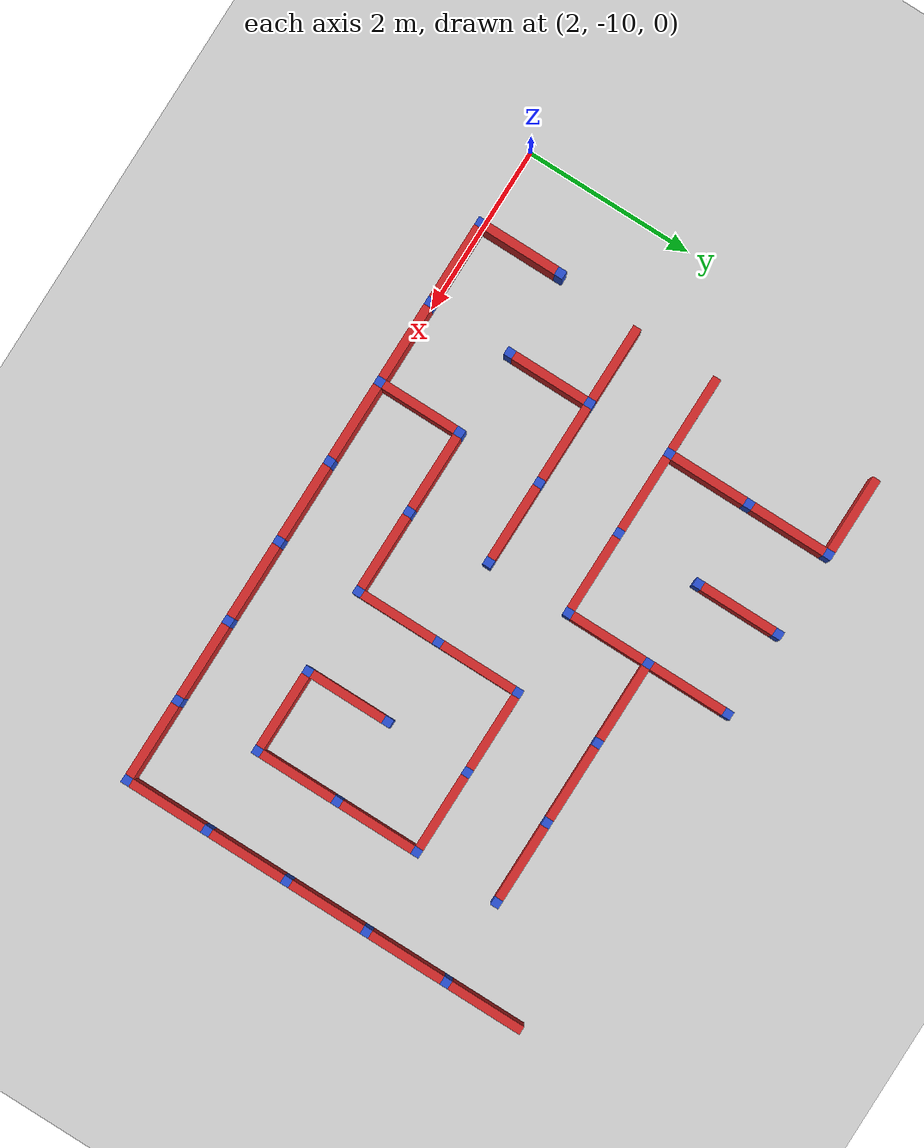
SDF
<sdf version="1.4">
 <world name="maze_world">
  <model name="ground">
   <static>true</static>
   <link name="ground_link">
    <collision name="collision1"><geometry><plane><normal>0 0 1</normal></plane></geometry></collision>
    <visual name="visual1"><geometry><plane><normal>0 0 1</normal><size>100 100</size></plane></geometry></visual>
   </link>
  </model>
  <model name="Untitled">
   <link name="Wall_3_5_h">
    <collision name="Wall_0_Collision">
     <geometry><box><size>0.9 0.1 1</size></box></geometry>
     <pose>0 0 0.75 0 -0 0</pose>
    </collision>
    <visual name="Wall_0_Visual">
     <pose>0 0 0.75 0 -0 0</pose>
     <geometry><box><size>0.9 0.1 1</size></box></geometry>
     <material>
      <script><uri>file://media/materials/scripts/gazebo.material</uri><name>Gazebo/Red</name></script>
      <ambient>0.921569 0.807843 0.615686 1</ambient>
     </material>
     <meta><layer>0</layer></meta>
    </visual>
    <pose>3.5 -5 0 0 -0 0</pose>
   </link>
   <link name="Wall_4_5_v">
    <collision name="Wall_0_Collision">
     <geometry><box><size>0.9 0.1 1</size></box></geometry>
     <pose>0 0 0.75 0 -0 0</pose>
    </collision>
    <visual name="Wall_0_Visual">
     <pose>0 0 0.75 0 -0 0</pose>
     <geometry><box><size>0.9 0.1 1</size></box></geometry>
     <material>
      <script><uri>file://media/materials/scripts/gazebo.material</uri><name>Gazebo/Red</name></script>
      <ambient>0.921569 0.807843 0.615686 1</ambient>
     </material>
     <meta><layer>0</layer></meta>
    </visual>
    <pose>4 -5.5 0 0 -0 1.5708</pose>
   </link>
   <link name="Joint_4_-5">
    <collision name="Wall_2_Collision">
     <geometry><box><size>0.1 0.1 1</size></box></geometry>
     <pose>0 0 0.75 0 -0 0</pose>
    </collision>
    <visual name="Wall_2_Visual">
     <pose>0 0 0.75 0 -0 0</pose>
     <geometry><box><size>0.1 0.1 1</size></box></geometry>
     <material>
      <script><uri>file://media/materials/scripts/gazebo.material</uri><name>Gazebo/Blue</name></script>
      <ambient>0.996078 0.47451 0.0196078 1</ambient>
     </material>
     <meta><layer>0</layer></meta>
    </visual>
    <pose>4 -5 0 0 -0 0</pose>
   </link>
   <link name="Wall_5_5_v">
    <collision name="Wall_0_Collision">
     <geometry><box><size>0.9 0.1 1</size></box></geometry>
     <pose>0 0 0.75 0 -0 0</pose>
    </collision>
    <visual name="Wall_0_Visual">
     <pose>0 0 0.75 0 -0 0</pose>
     <geometry><box><size>0.9 0.1 1</size></box></geometry>
     <material>
      <script><uri>file://media/materials/scripts/gazebo.material</uri><name>Gazebo/Red</name></script>
      <ambient>0.921569 0.807843 0.615686 1</ambient>
     </material>
     <meta><layer>0</layer></meta>
    </visual>
    <pose>5 -5.5 0 0 -0 1.5708</pose>
   </link>
   <link name="Joint_5_-5">
    <collision name="Wall_2_Collision">
     <geometry><box><size>0.1 0.1 1</size></box></geometry>
     <pose>0 0 0.75 0 -0 0</pose>
    </collision>
    <visual name="Wall_2_Visual">
     <pose>0 0 0.75 0 -0 0</pose>
     <geometry><box><size>0.1 0.1 1</size></box></geometry>
     <material>
      <script><uri>file://media/materials/scripts/gazebo.material</uri><name>Gazebo/Blue</name></script>
      <ambient>0.996078 0.47451 0.0196078 1</ambient>
     </material>
     <meta><layer>0</layer></meta>
    </visual>
    <pose>5 -5 0 0 -0 0</pose>
   </link>
   <link name="Wall_6_5_v">
    <collision name="Wall_0_Collision">
     <geometry><box><size>0.9 0.1 1</size></box></geometry>
     <pose>0 0 0.75 0 -0 0</pose>
    </collision>
    <visual name="Wall_0_Visual">
     <pose>0 0 0.75 0 -0 0</pose>
     <geometry><box><size>0.9 0.1 1</size></box></geometry>
     <material>
      <script><uri>file://media/materials/scripts/gazebo.material</uri><name>Gazebo/Red</name></script>
      <ambient>0.921569 0.807843 0.615686 1</ambient>
     </material>
     <meta><layer>0</layer></meta>
    </visual>
    <pose>6 -5.5 0 0 -0 1.5708</pose>
   </link>
   <link name="Joint_6_-5">
    <collision name="Wall_2_Collision">
     <geometry><box><size>0.1 0.1 1</size></box></geometry>
     <pose>0 0 0.75 0 -0 0</pose>
    </collision>
    <visual name="Wall_2_Visual">
     <pose>0 0 0.75 0 -0 0</pose>
     <geometry><box><size>0.1 0.1 1</size></box></geometry>
     <material>
      <script><uri>file://media/materials/scripts/gazebo.material</uri><name>Gazebo/Blue</name></script>
      <ambient>0.996078 0.47451 0.0196078 1</ambient>
     </material>
     <meta><layer>0</layer></meta>
    </visual>
    <pose>6 -5 0 0 -0 0</pose>
   </link>
   <link name="Wall_10_5_v">
    <collision name="Wall_0_Collision">
     <geometry><box><size>0.9 0.1 1</size></box></geometry>
     <pose>0 0 0.75 0 -0 0</pose>
    </collision>
    <visual name="Wall_0_Visual">
     <pose>0 0 0.75 0 -0 0</pose>
     <geometry><box><size>0.9 0.1 1</size></box></geometry>
     <material>
      <script><uri>file://media/materials/scripts/gazebo.material</uri><name>Gazebo/Red</name></script>
      <ambient>0.921569 0.807843 0.615686 1</ambient>
     </material>
     <meta><layer>0</layer></meta>
    </visual>
    <pose>10 -5.5 0 0 -0 1.5708</pose>
   </link>
   <link name="Wall_4_6_v">
    <collision name="Wall_0_Collision">
     <geometry><box><size>0.9 0.1 1</size></box></geometry>
     <pose>0 0 0.75 0 -0 0</pose>
    </collision>
    <visual name="Wall_0_Visual">
     <pose>0 0 0.75 0 -0 0</pose>
     <geometry><box><size>0.9 0.1 1</size></box></geometry>
     <material>
      <script><uri>file://media/materials/scripts/gazebo.material</uri><name>Gazebo/Red</name></script>
      <ambient>0.921569 0.807843 0.615686 1</ambient>
     </material>
     <meta><layer>0</layer></meta>
    </visual>
    <pose>4 -6.5 0 0 -0 1.5708</pose>
   </link>
   <link name="Joint_4_-6">
    <collision name="Wall_2_Collision">
     <geometry><box><size>0.1 0.1 1</size></box></geometry>
     <pose>0 0 0.75 0 -0 0</pose>
    </collision>
    <visual name="Wall_2_Visual">
     <pose>0 0 0.75 0 -0 0</pose>
     <geometry><box><size>0.1 0.1 1</size></box></geometry>
     <material>
      <script><uri>file://media/materials/scripts/gazebo.material</uri><name>Gazebo/Blue</name></script>
      <ambient>0.996078 0.47451 0.0196078 1</ambient>
     </material>
     <meta><layer>0</layer></meta>
    </visual>
    <pose>4 -6 0 0 -0 0</pose>
   </link>
   <link name="Joint_5_-6">
    <collision name="Wall_2_Collision">
     <geometry><box><size>0.1 0.1 1</size></box></geometry>
     <pose>0 0 0.75 0 -0 0</pose>
    </collision>
    <visual name="Wall_2_Visual">
     <pose>0 0 0.75 0 -0 0</pose>
     <geometry><box><size>0.1 0.1 1</size></box></geometry>
     <material>
      <script><uri>file://media/materials/scripts/gazebo.material</uri><name>Gazebo/Blue</name></script>
      <ambient>0.996078 0.47451 0.0196078 1</ambient>
     </material>
     <meta><layer>0</layer></meta>
    </visual>
    <pose>5 -6 0 0 -0 0</pose>
   </link>
   <link name="Wall_6_6_h">
    <collision name="Wall_0_Collision">
     <geometry><box><size>0.9 0.1 1</size></box></geometry>
     <pose>0 0 0.75 0 -0 0</pose>
    </collision>
    <visual name="Wall_0_Visual">
     <pose>0 0 0.75 0 -0 0</pose>
     <geometry><box><size>0.9 0.1 1</size></box></geometry>
     <material>
      <script><uri>file://media/materials/scripts/gazebo.material</uri><name>Gazebo/Red</name></script>
      <ambient>0.921569 0.807843 0.615686 1</ambient>
     </material>
     <meta><layer>0</layer></meta>
    </visual>
    <pose>6.5 -6 0 0 -0 0</pose>
   </link>
   <link name="Wall_6_6_v">
    <collision name="Wall_0_Collision">
     <geometry><box><size>0.9 0.1 1</size></box></geometry>
     <pose>0 0 0.75 0 -0 0</pose>
    </collision>
    <visual name="Wall_0_Visual">
     <pose>0 0 0.75 0 -0 0</pose>
     <geometry><box><size>0.9 0.1 1</size></box></geometry>
     <material>
      <script><uri>file://media/materials/scripts/gazebo.material</uri><name>Gazebo/Red</name></script>
      <ambient>0.921569 0.807843 0.615686 1</ambient>
     </material>
     <meta><layer>0</layer></meta>
    </visual>
    <pose>6 -6.5 0 0 -0 1.5708</pose>
   </link>
   <link name="Joint_6_-6">
    <collision name="Wall_2_Collision">
     <geometry><box><size>0.1 0.1 1</size></box></geometry>
     <pose>0 0 0.75 0 -0 0</pose>
    </collision>
    <visual name="Wall_2_Visual">
     <pose>0 0 0.75 0 -0 0</pose>
     <geometry><box><size>0.1 0.1 1</size></box></geometry>
     <material>
      <script><uri>file://media/materials/scripts/gazebo.material</uri><name>Gazebo/Blue</name></script>
      <ambient>0.996078 0.47451 0.0196078 1</ambient>
     </material>
     <meta><layer>0</layer></meta>
    </visual>
    <pose>6 -6 0 0 -0 0</pose>
   </link>
   <link name="Wall_7_6_h">
    <collision name="Wall_0_Collision">
     <geometry><box><size>0.9 0.1 1</size></box></geometry>
     <pose>0 0 0.75 0 -0 0</pose>
    </collision>
    <visual name="Wall_0_Visual">
     <pose>0 0 0.75 0 -0 0</pose>
     <geometry><box><size>0.9 0.1 1</size></box></geometry>
     <material>
      <script><uri>file://media/materials/scripts/gazebo.material</uri><name>Gazebo/Red</name></script>
      <ambient>0.921569 0.807843 0.615686 1</ambient>
     </material>
     <meta><layer>0</layer></meta>
    </visual>
    <pose>7.5 -6 0 0 -0 0</pose>
   </link>
   <link name="Joint_7_-6">
    <collision name="Wall_2_Collision">
     <geometry><box><size>0.1 0.1 1</size></box></geometry>
     <pose>0 0 0.75 0 -0 0</pose>
    </collision>
    <visual name="Wall_2_Visual">
     <pose>0 0 0.75 0 -0 0</pose>
     <geometry><box><size>0.1 0.1 1</size></box></geometry>
     <material>
      <script><uri>file://media/materials/scripts/gazebo.material</uri><name>Gazebo/Blue</name></script>
      <ambient>0.996078 0.47451 0.0196078 1</ambient>
     </material>
     <meta><layer>0</layer></meta>
    </visual>
    <pose>7 -6 0 0 -0 0</pose>
   </link>
   <link name="Wall_8_6_h">
    <collision name="Wall_0_Collision">
     <geometry><box><size>0.9 0.1 1</size></box></geometry>
     <pose>0 0 0.75 0 -0 0</pose>
    </collision>
    <visual name="Wall_0_Visual">
     <pose>0 0 0.75 0 -0 0</pose>
     <geometry><box><size>0.9 0.1 1</size></box></geometry>
     <material>
      <script><uri>file://media/materials/scripts/gazebo.material</uri><name>Gazebo/Red</name></script>
      <ambient>0.921569 0.807843 0.615686 1</ambient>
     </material>
     <meta><layer>0</layer></meta>
    </visual>
    <pose>8.5 -6 0 0 -0 0</pose>
   </link>
   <link name="Joint_8_-6">
    <collision name="Wall_2_Collision">
     <geometry><box><size>0.1 0.1 1</size></box></geometry>
     <pose>0 0 0.75 0 -0 0</pose>
    </collision>
    <visual name="Wall_2_Visual">
     <pose>0 0 0.75 0 -0 0</pose>
     <geometry><box><size>0.1 0.1 1</size></box></geometry>
     <material>
      <script><uri>file://media/materials/scripts/gazebo.material</uri><name>Gazebo/Blue</name></script>
      <ambient>0.996078 0.47451 0.0196078 1</ambient>
     </material>
     <meta><layer>0</layer></meta>
    </visual>
    <pose>8 -6 0 0 -0 0</pose>
   </link>
   <link name="Joint_9_-6">
    <collision name="Wall_2_Collision">
     <geometry><box><size>0.1 0.1 1</size></box></geometry>
     <pose>0 0 0.75 0 -0 0</pose>
    </collision>
    <visual name="Wall_2_Visual">
     <pose>0 0 0.75 0 -0 0</pose>
     <geometry><box><size>0.1 0.1 1</size></box></geometry>
     <material>
      <script><uri>file://media/materials/scripts/gazebo.material</uri><name>Gazebo/Blue</name></script>
      <ambient>0.996078 0.47451 0.0196078 1</ambient>
     </material>
     <meta><layer>0</layer></meta>
    </visual>
    <pose>9 -6 0 0 -0 0</pose>
   </link>
   <link name="Wall_10_6_v">
    <collision name="Wall_0_Collision">
     <geometry><box><size>0.9 0.1 1</size></box></geometry>
     <pose>0 0 0.75 0 -0 0</pose>
    </collision>
    <visual name="Wall_0_Visual">
     <pose>0 0 0.75 0 -0 0</pose>
     <geometry><box><size>0.9 0.1 1</size></box></geometry>
     <material>
      <script><uri>file://media/materials/scripts/gazebo.material</uri><name>Gazebo/Red</name></script>
      <ambient>0.921569 0.807843 0.615686 1</ambient>
     </material>
     <meta><layer>0</layer></meta>
    </visual>
    <pose>10 -6.5 0 0 -0 1.5708</pose>
   </link>
   <link name="Joint_10_-6">
    <collision name="Wall_2_Collision">
     <geometry><box><size>0.1 0.1 1</size></box></geometry>
     <pose>0 0 0.75 0 -0 0</pose>
    </collision>
    <visual name="Wall_2_Visual">
     <pose>0 0 0.75 0 -0 0</pose>
     <geometry><box><size>0.1 0.1 1</size></box></geometry>
     <material>
      <script><uri>file://media/materials/scripts/gazebo.material</uri><name>Gazebo/Blue</name></script>
      <ambient>0.996078 0.47451 0.0196078 1</ambient>
     </material>
     <meta><layer>0</layer></meta>
    </visual>
    <pose>10 -6 0 0 -0 0</pose>
   </link>
   <link name="Wall_3_7_h">
    <collision name="Wall_0_Collision">
     <geometry><box><size>0.9 0.1 1</size></box></geometry>
     <pose>0 0 0.75 0 -0 0</pose>
    </collision>
    <visual name="Wall_0_Visual">
     <pose>0 0 0.75 0 -0 0</pose>
     <geometry><box><size>0.9 0.1 1</size></box></geometry>
     <material>
      <script><uri>file://media/materials/scripts/gazebo.material</uri><name>Gazebo/Red</name></script>
      <ambient>0.921569 0.807843 0.615686 1</ambient>
     </material>
     <meta><layer>0</layer></meta>
    </visual>
    <pose>3.5 -7 0 0 -0 0</pose>
   </link>
   <link name="Wall_4_7_h">
    <collision name="Wall_0_Collision">
     <geometry><box><size>0.9 0.1 1</size></box></geometry>
     <pose>0 0 0.75 0 -0 0</pose>
    </collision>
    <visual name="Wall_0_Visual">
     <pose>0 0 0.75 0 -0 0</pose>
     <geometry><box><size>0.9 0.1 1</size></box></geometry>
     <material>
      <script><uri>file://media/materials/scripts/gazebo.material</uri><name>Gazebo/Red</name></script>
      <ambient>0.921569 0.807843 0.615686 1</ambient>
     </material>
     <meta><layer>0</layer></meta>
    </visual>
    <pose>4.5 -7 0 0 -0 0</pose>
   </link>
   <link name="Joint_4_-7">
    <collision name="Wall_2_Collision">
     <geometry><box><size>0.1 0.1 1</size></box></geometry>
     <pose>0 0 0.75 0 -0 0</pose>
    </collision>
    <visual name="Wall_2_Visual">
     <pose>0 0 0.75 0 -0 0</pose>
     <geometry><box><size>0.1 0.1 1</size></box></geometry>
     <material>
      <script><uri>file://media/materials/scripts/gazebo.material</uri><name>Gazebo/Blue</name></script>
      <ambient>0.996078 0.47451 0.0196078 1</ambient>
     </material>
     <meta><layer>0</layer></meta>
    </visual>
    <pose>4 -7 0 0 -0 0</pose>
   </link>
   <link name="Wall_5_7_h">
    <collision name="Wall_0_Collision">
     <geometry><box><size>0.9 0.1 1</size></box></geometry>
     <pose>0 0 0.75 0 -0 0</pose>
    </collision>
    <visual name="Wall_0_Visual">
     <pose>0 0 0.75 0 -0 0</pose>
     <geometry><box><size>0.9 0.1 1</size></box></geometry>
     <material>
      <script><uri>file://media/materials/scripts/gazebo.material</uri><name>Gazebo/Red</name></script>
      <ambient>0.921569 0.807843 0.615686 1</ambient>
     </material>
     <meta><layer>0</layer></meta>
    </visual>
    <pose>5.5 -7 0 0 -0 0</pose>
   </link>
   <link name="Joint_5_-7">
    <collision name="Wall_2_Collision">
     <geometry><box><size>0.1 0.1 1</size></box></geometry>
     <pose>0 0 0.75 0 -0 0</pose>
    </collision>
    <visual name="Wall_2_Visual">
     <pose>0 0 0.75 0 -0 0</pose>
     <geometry><box><size>0.1 0.1 1</size></box></geometry>
     <material>
      <script><uri>file://media/materials/scripts/gazebo.material</uri><name>Gazebo/Blue</name></script>
      <ambient>0.996078 0.47451 0.0196078 1</ambient>
     </material>
     <meta><layer>0</layer></meta>
    </visual>
    <pose>5 -7 0 0 -0 0</pose>
   </link>
   <link name="Joint_6_-7">
    <collision name="Wall_2_Collision">
     <geometry><box><size>0.1 0.1 1</size></box></geometry>
     <pose>0 0 0.75 0 -0 0</pose>
    </collision>
    <visual name="Wall_2_Visual">
     <pose>0 0 0.75 0 -0 0</pose>
     <geometry><box><size>0.1 0.1 1</size></box></geometry>
     <material>
      <script><uri>file://media/materials/scripts/gazebo.material</uri><name>Gazebo/Blue</name></script>
      <ambient>0.996078 0.47451 0.0196078 1</ambient>
     </material>
     <meta><layer>0</layer></meta>
    </visual>
    <pose>6 -7 0 0 -0 0</pose>
   </link>
   <link name="Wall_7_7_h">
    <collision name="Wall_0_Collision">
     <geometry><box><size>0.9 0.1 1</size></box></geometry>
     <pose>0 0 0.75 0 -0 0</pose>
    </collision>
    <visual name="Wall_0_Visual">
     <pose>0 0 0.75 0 -0 0</pose>
     <geometry><box><size>0.9 0.1 1</size></box></geometry>
     <material>
      <script><uri>file://media/materials/scripts/gazebo.material</uri><name>Gazebo/Red</name></script>
      <ambient>0.921569 0.807843 0.615686 1</ambient>
     </material>
     <meta><layer>0</layer></meta>
    </visual>
    <pose>7.5 -7 0 0 -0 0</pose>
   </link>
   <link name="Wall_7_7_v">
    <collision name="Wall_0_Collision">
     <geometry><box><size>0.9 0.1 1</size></box></geometry>
     <pose>0 0 0.75 0 -0 0</pose>
    </collision>
    <visual name="Wall_0_Visual">
     <pose>0 0 0.75 0 -0 0</pose>
     <geometry><box><size>0.9 0.1 1</size></box></geometry>
     <material>
      <script><uri>file://media/materials/scripts/gazebo.material</uri><name>Gazebo/Red</name></script>
      <ambient>0.921569 0.807843 0.615686 1</ambient>
     </material>
     <meta><layer>0</layer></meta>
    </visual>
    <pose>7 -7.5 0 0 -0 1.5708</pose>
   </link>
   <link name="Joint_7_-7">
    <collision name="Wall_2_Collision">
     <geometry><box><size>0.1 0.1 1</size></box></geometry>
     <pose>0 0 0.75 0 -0 0</pose>
    </collision>
    <visual name="Wall_2_Visual">
     <pose>0 0 0.75 0 -0 0</pose>
     <geometry><box><size>0.1 0.1 1</size></box></geometry>
     <material>
      <script><uri>file://media/materials/scripts/gazebo.material</uri><name>Gazebo/Blue</name></script>
      <ambient>0.996078 0.47451 0.0196078 1</ambient>
     </material>
     <meta><layer>0</layer></meta>
    </visual>
    <pose>7 -7 0 0 -0 0</pose>
   </link>
   <link name="Wall_8_7_h">
    <collision name="Wall_0_Collision">
     <geometry><box><size>0.9 0.1 1</size></box></geometry>
     <pose>0 0 0.75 0 -0 0</pose>
    </collision>
    <visual name="Wall_0_Visual">
     <pose>0 0 0.75 0 -0 0</pose>
     <geometry><box><size>0.9 0.1 1</size></box></geometry>
     <material>
      <script><uri>file://media/materials/scripts/gazebo.material</uri><name>Gazebo/Red</name></script>
      <ambient>0.921569 0.807843 0.615686 1</ambient>
     </material>
     <meta><layer>0</layer></meta>
    </visual>
    <pose>8.5 -7 0 0 -0 0</pose>
   </link>
   <link name="Joint_8_-7">
    <collision name="Wall_2_Collision">
     <geometry><box><size>0.1 0.1 1</size></box></geometry>
     <pose>0 0 0.75 0 -0 0</pose>
    </collision>
    <visual name="Wall_2_Visual">
     <pose>0 0 0.75 0 -0 0</pose>
     <geometry><box><size>0.1 0.1 1</size></box></geometry>
     <material>
      <script><uri>file://media/materials/scripts/gazebo.material</uri><name>Gazebo/Blue</name></script>
      <ambient>0.996078 0.47451 0.0196078 1</ambient>
     </material>
     <meta><layer>0</layer></meta>
    </visual>
    <pose>8 -7 0 0 -0 0</pose>
   </link>
   <link name="Wall_9_7_v">
    <collision name="Wall_0_Collision">
     <geometry><box><size>0.9 0.1 1</size></box></geometry>
     <pose>0 0 0.75 0 -0 0</pose>
    </collision>
    <visual name="Wall_0_Visual">
     <pose>0 0 0.75 0 -0 0</pose>
     <geometry><box><size>0.9 0.1 1</size></box></geometry>
     <material>
      <script><uri>file://media/materials/scripts/gazebo.material</uri><name>Gazebo/Red</name></script>
      <ambient>0.921569 0.807843 0.615686 1</ambient>
     </material>
     <meta><layer>0</layer></meta>
    </visual>
    <pose>9 -7.5 0 0 -0 1.5708</pose>
   </link>
   <link name="Joint_9_-7">
    <collision name="Wall_2_Collision">
     <geometry><box><size>0.1 0.1 1</size></box></geometry>
     <pose>0 0 0.75 0 -0 0</pose>
    </collision>
    <visual name="Wall_2_Visual">
     <pose>0 0 0.75 0 -0 0</pose>
     <geometry><box><size>0.1 0.1 1</size></box></geometry>
     <material>
      <script><uri>file://media/materials/scripts/gazebo.material</uri><name>Gazebo/Blue</name></script>
      <ambient>0.996078 0.47451 0.0196078 1</ambient>
     </material>
     <meta><layer>0</layer></meta>
    </visual>
    <pose>9 -7 0 0 -0 0</pose>
   </link>
   <link name="Wall_10_7_v">
    <collision name="Wall_0_Collision">
     <geometry><box><size>0.9 0.1 1</size></box></geometry>
     <pose>0 0 0.75 0 -0 0</pose>
    </collision>
    <visual name="Wall_0_Visual">
     <pose>0 0 0.75 0 -0 0</pose>
     <geometry><box><size>0.9 0.1 1</size></box></geometry>
     <material>
      <script><uri>file://media/materials/scripts/gazebo.material</uri><name>Gazebo/Red</name></script>
      <ambient>0.921569 0.807843 0.615686 1</ambient>
     </material>
     <meta><layer>0</layer></meta>
    </visual>
    <pose>10 -7.5 0 0 -0 1.5708</pose>
   </link>
   <link name="Joint_10_-7">
    <collision name="Wall_2_Collision">
     <geometry><box><size>0.1 0.1 1</size></box></geometry>
     <pose>0 0 0.75 0 -0 0</pose>
    </collision>
    <visual name="Wall_2_Visual">
     <pose>0 0 0.75 0 -0 0</pose>
     <geometry><box><size>0.1 0.1 1</size></box></geometry>
     <material>
      <script><uri>file://media/materials/scripts/gazebo.material</uri><name>Gazebo/Blue</name></script>
      <ambient>0.996078 0.47451 0.0196078 1</ambient>
     </material>
     <meta><layer>0</layer></meta>
    </visual>
    <pose>10 -7 0 0 -0 0</pose>
   </link>
   <link name="Wall_3_8_h">
    <collision name="Wall_0_Collision">
     <geometry><box><size>0.9 0.1 1</size></box></geometry>
     <pose>0 0 0.75 0 -0 0</pose>
    </collision>
    <visual name="Wall_0_Visual">
     <pose>0 0 0.75 0 -0 0</pose>
     <geometry><box><size>0.9 0.1 1</size></box></geometry>
     <material>
      <script><uri>file://media/materials/scripts/gazebo.material</uri><name>Gazebo/Red</name></script>
      <ambient>0.921569 0.807843 0.615686 1</ambient>
     </material>
     <meta><layer>0</layer></meta>
    </visual>
    <pose>3.5 -8 0 0 -0 0</pose>
   </link>
   <link name="Wall_4_8_h">
    <collision name="Wall_0_Collision">
     <geometry><box><size>0.9 0.1 1</size></box></geometry>
     <pose>0 0 0.75 0 -0 0</pose>
    </collision>
    <visual name="Wall_0_Visual">
     <pose>0 0 0.75 0 -0 0</pose>
     <geometry><box><size>0.9 0.1 1</size></box></geometry>
     <material>
      <script><uri>file://media/materials/scripts/gazebo.material</uri><name>Gazebo/Red</name></script>
      <ambient>0.921569 0.807843 0.615686 1</ambient>
     </material>
     <meta><layer>0</layer></meta>
    </visual>
    <pose>4.5 -8 0 0 -0 0</pose>
   </link>
   <link name="Wall_4_8_v">
    <collision name="Wall_0_Collision">
     <geometry><box><size>0.9 0.1 1</size></box></geometry>
     <pose>0 0 0.75 0 -0 0</pose>
    </collision>
    <visual name="Wall_0_Visual">
     <pose>0 0 0.75 0 -0 0</pose>
     <geometry><box><size>0.9 0.1 1</size></box></geometry>
     <material>
      <script><uri>file://media/materials/scripts/gazebo.material</uri><name>Gazebo/Red</name></script>
      <ambient>0.921569 0.807843 0.615686 1</ambient>
     </material>
     <meta><layer>0</layer></meta>
    </visual>
    <pose>4 -8.5 0 0 -0 1.5708</pose>
   </link>
   <link name="Joint_4_-8">
    <collision name="Wall_2_Collision">
     <geometry><box><size>0.1 0.1 1</size></box></geometry>
     <pose>0 0 0.75 0 -0 0</pose>
    </collision>
    <visual name="Wall_2_Visual">
     <pose>0 0 0.75 0 -0 0</pose>
     <geometry><box><size>0.1 0.1 1</size></box></geometry>
     <material>
      <script><uri>file://media/materials/scripts/gazebo.material</uri><name>Gazebo/Blue</name></script>
      <ambient>0.996078 0.47451 0.0196078 1</ambient>
     </material>
     <meta><layer>0</layer></meta>
    </visual>
    <pose>4 -8 0 0 -0 0</pose>
   </link>
   <link name="Wall_5_8_h">
    <collision name="Wall_0_Collision">
     <geometry><box><size>0.9 0.1 1</size></box></geometry>
     <pose>0 0 0.75 0 -0 0</pose>
    </collision>
    <visual name="Wall_0_Visual">
     <pose>0 0 0.75 0 -0 0</pose>
     <geometry><box><size>0.9 0.1 1</size></box></geometry>
     <material>
      <script><uri>file://media/materials/scripts/gazebo.material</uri><name>Gazebo/Red</name></script>
      <ambient>0.921569 0.807843 0.615686 1</ambient>
     </material>
     <meta><layer>0</layer></meta>
    </visual>
    <pose>5.5 -8 0 0 -0 0</pose>
   </link>
   <link name="Joint_5_-8">
    <collision name="Wall_2_Collision">
     <geometry><box><size>0.1 0.1 1</size></box></geometry>
     <pose>0 0 0.75 0 -0 0</pose>
    </collision>
    <visual name="Wall_2_Visual">
     <pose>0 0 0.75 0 -0 0</pose>
     <geometry><box><size>0.1 0.1 1</size></box></geometry>
     <material>
      <script><uri>file://media/materials/scripts/gazebo.material</uri><name>Gazebo/Blue</name></script>
      <ambient>0.996078 0.47451 0.0196078 1</ambient>
     </material>
     <meta><layer>0</layer></meta>
    </visual>
    <pose>5 -8 0 0 -0 0</pose>
   </link>
   <link name="Joint_6_-8">
    <collision name="Wall_2_Collision">
     <geometry><box><size>0.1 0.1 1</size></box></geometry>
     <pose>0 0 0.75 0 -0 0</pose>
    </collision>
    <visual name="Wall_2_Visual">
     <pose>0 0 0.75 0 -0 0</pose>
     <geometry><box><size>0.1 0.1 1</size></box></geometry>
     <material>
      <script><uri>file://media/materials/scripts/gazebo.material</uri><name>Gazebo/Blue</name></script>
      <ambient>0.996078 0.47451 0.0196078 1</ambient>
     </material>
     <meta><layer>0</layer></meta>
    </visual>
    <pose>6 -8 0 0 -0 0</pose>
   </link>
   <link name="Wall_7_8_v">
    <collision name="Wall_0_Collision">
     <geometry><box><size>0.9 0.1 1</size></box></geometry>
     <pose>0 0 0.75 0 -0 0</pose>
    </collision>
    <visual name="Wall_0_Visual">
     <pose>0 0 0.75 0 -0 0</pose>
     <geometry><box><size>0.9 0.1 1</size></box></geometry>
     <material>
      <script><uri>file://media/materials/scripts/gazebo.material</uri><name>Gazebo/Red</name></script>
      <ambient>0.921569 0.807843 0.615686 1</ambient>
     </material>
     <meta><layer>0</layer></meta>
    </visual>
    <pose>7 -8.5 0 0 -0 1.5708</pose>
   </link>
   <link name="Joint_7_-8">
    <collision name="Wall_2_Collision">
     <geometry><box><size>0.1 0.1 1</size></box></geometry>
     <pose>0 0 0.75 0 -0 0</pose>
    </collision>
    <visual name="Wall_2_Visual">
     <pose>0 0 0.75 0 -0 0</pose>
     <geometry><box><size>0.1 0.1 1</size></box></geometry>
     <material>
      <script><uri>file://media/materials/scripts/gazebo.material</uri><name>Gazebo/Blue</name></script>
      <ambient>0.996078 0.47451 0.0196078 1</ambient>
     </material>
     <meta><layer>0</layer></meta>
    </visual>
    <pose>7 -8 0 0 -0 0</pose>
   </link>
   <link name="Wall_8_8_v">
    <collision name="Wall_0_Collision">
     <geometry><box><size>0.9 0.1 1</size></box></geometry>
     <pose>0 0 0.75 0 -0 0</pose>
    </collision>
    <visual name="Wall_0_Visual">
     <pose>0 0 0.75 0 -0 0</pose>
     <geometry><box><size>0.9 0.1 1</size></box></geometry>
     <material>
      <script><uri>file://media/materials/scripts/gazebo.material</uri><name>Gazebo/Red</name></script>
      <ambient>0.921569 0.807843 0.615686 1</ambient>
     </material>
     <meta><layer>0</layer></meta>
    </visual>
    <pose>8 -8.5 0 0 -0 1.5708</pose>
   </link>
   <link name="Joint_8_-8">
    <collision name="Wall_2_Collision">
     <geometry><box><size>0.1 0.1 1</size></box></geometry>
     <pose>0 0 0.75 0 -0 0</pose>
    </collision>
    <visual name="Wall_2_Visual">
     <pose>0 0 0.75 0 -0 0</pose>
     <geometry><box><size>0.1 0.1 1</size></box></geometry>
     <material>
      <script><uri>file://media/materials/scripts/gazebo.material</uri><name>Gazebo/Blue</name></script>
      <ambient>0.996078 0.47451 0.0196078 1</ambient>
     </material>
     <meta><layer>0</layer></meta>
    </visual>
    <pose>8 -8 0 0 -0 0</pose>
   </link>
   <link name="Wall_9_8_v">
    <collision name="Wall_0_Collision">
     <geometry><box><size>0.9 0.1 1</size></box></geometry>
     <pose>0 0 0.75 0 -0 0</pose>
    </collision>
    <visual name="Wall_0_Visual">
     <pose>0 0 0.75 0 -0 0</pose>
     <geometry><box><size>0.9 0.1 1</size></box></geometry>
     <material>
      <script><uri>file://media/materials/scripts/gazebo.material</uri><name>Gazebo/Red</name></script>
      <ambient>0.921569 0.807843 0.615686 1</ambient>
     </material>
     <meta><layer>0</layer></meta>
    </visual>
    <pose>9 -8.5 0 0 -0 1.5708</pose>
   </link>
   <link name="Joint_9_-8">
    <collision name="Wall_2_Collision">
     <geometry><box><size>0.1 0.1 1</size></box></geometry>
     <pose>0 0 0.75 0 -0 0</pose>
    </collision>
    <visual name="Wall_2_Visual">
     <pose>0 0 0.75 0 -0 0</pose>
     <geometry><box><size>0.1 0.1 1</size></box></geometry>
     <material>
      <script><uri>file://media/materials/scripts/gazebo.material</uri><name>Gazebo/Blue</name></script>
      <ambient>0.996078 0.47451 0.0196078 1</ambient>
     </material>
     <meta><layer>0</layer></meta>
    </visual>
    <pose>9 -8 0 0 -0 0</pose>
   </link>
   <link name="Wall_10_8_v">
    <collision name="Wall_0_Collision">
     <geometry><box><size>0.9 0.1 1</size></box></geometry>
     <pose>0 0 0.75 0 -0 0</pose>
    </collision>
    <visual name="Wall_0_Visual">
     <pose>0 0 0.75 0 -0 0</pose>
     <geometry><box><size>0.9 0.1 1</size></box></geometry>
     <material>
      <script><uri>file://media/materials/scripts/gazebo.material</uri><name>Gazebo/Red</name></script>
      <ambient>0.921569 0.807843 0.615686 1</ambient>
     </material>
     <meta><layer>0</layer></meta>
    </visual>
    <pose>10 -8.5 0 0 -0 1.5708</pose>
   </link>
   <link name="Joint_10_-8">
    <collision name="Wall_2_Collision">
     <geometry><box><size>0.1 0.1 1</size></box></geometry>
     <pose>0 0 0.75 0 -0 0</pose>
    </collision>
    <visual name="Wall_2_Visual">
     <pose>0 0 0.75 0 -0 0</pose>
     <geometry><box><size>0.1 0.1 1</size></box></geometry>
     <material>
      <script><uri>file://media/materials/scripts/gazebo.material</uri><name>Gazebo/Blue</name></script>
      <ambient>0.996078 0.47451 0.0196078 1</ambient>
     </material>
     <meta><layer>0</layer></meta>
    </visual>
    <pose>10 -8 0 0 -0 0</pose>
   </link>
   <link name="Wall_3_9_v">
    <collision name="Wall_0_Collision">
     <geometry><box><size>0.9 0.1 1</size></box></geometry>
     <pose>0 0 0.75 0 -0 0</pose>
    </collision>
    <visual name="Wall_0_Visual">
     <pose>0 0 0.75 0 -0 0</pose>
     <geometry><box><size>0.9 0.1 1</size></box></geometry>
     <material>
      <script><uri>file://media/materials/scripts/gazebo.material</uri><name>Gazebo/Red</name></script>
      <ambient>0.921569 0.807843 0.615686 1</ambient>
     </material>
     <meta><layer>0</layer></meta>
    </visual>
    <pose>3 -9.5 0 0 -0 1.5708</pose>
   </link>
   <link name="Joint_3_-9">
    <collision name="Wall_2_Collision">
     <geometry><box><size>0.1 0.1 1</size></box></geometry>
     <pose>0 0 0.75 0 -0 0</pose>
    </collision>
    <visual name="Wall_2_Visual">
     <pose>0 0 0.75 0 -0 0</pose>
     <geometry><box><size>0.1 0.1 1</size></box></geometry>
     <material>
      <script><uri>file://media/materials/scripts/gazebo.material</uri><name>Gazebo/Blue</name></script>
      <ambient>0.996078 0.47451 0.0196078 1</ambient>
     </material>
     <meta><layer>0</layer></meta>
    </visual>
    <pose>3 -9 0 0 -0 0</pose>
   </link>
   <link name="Wall_3_10_h">
    <collision name="Wall_0_Collision">
     <geometry><box><size>0.9 0.1 1</size></box></geometry>
     <pose>0 0 0.75 0 -0 0</pose>
    </collision>
    <visual name="Wall_0_Visual">
     <pose>0 0 0.75 0 -0 0</pose>
     <geometry><box><size>0.9 0.1 1</size></box></geometry>
     <material>
      <script><uri>file://media/materials/scripts/gazebo.material</uri><name>Gazebo/Red</name></script>
      <ambient>0.921569 0.807843 0.615686 1</ambient>
     </material>
     <meta><layer>0</layer></meta>
    </visual>
    <pose>3.5 -10 0 0 -0 0</pose>
   </link>
   <link name="Joint_3_-10">
    <collision name="Wall_2_Collision">
     <geometry><box><size>0.1 0.1 1</size></box></geometry>
     <pose>0 0 0.75 0 -0 0</pose>
    </collision>
    <visual name="Wall_2_Visual">
     <pose>0 0 0.75 0 -0 0</pose>
     <geometry><box><size>0.1 0.1 1</size></box></geometry>
     <material>
      <script><uri>file://media/materials/scripts/gazebo.material</uri><name>Gazebo/Blue</name></script>
      <ambient>0.996078 0.47451 0.0196078 1</ambient>
     </material>
     <meta><layer>0</layer></meta>
    </visual>
    <pose>3 -10 0 0 -0 0</pose>
   </link>
   <link name="Joint_4_-9">
    <collision name="Wall_2_Collision">
     <geometry><box><size>0.1 0.1 1</size></box></geometry>
     <pose>0 0 0.75 0 -0 0</pose>
    </collision>
    <visual name="Wall_2_Visual">
     <pose>0 0 0.75 0 -0 0</pose>
     <geometry><box><size>0.1 0.1 1</size></box></geometry>
     <material>
      <script><uri>file://media/materials/scripts/gazebo.material</uri><name>Gazebo/Blue</name></script>
      <ambient>0.996078 0.47451 0.0196078 1</ambient>
     </material>
     <meta><layer>0</layer></meta>
    </visual>
    <pose>4 -9 0 0 -0 0</pose>
   </link>
   <link name="Wall_4_10_h">
    <collision name="Wall_0_Collision">
     <geometry><box><size>0.9 0.1 1</size></box></geometry>
     <pose>0 0 0.75 0 -0 0</pose>
    </collision>
    <visual name="Wall_0_Visual">
     <pose>0 0 0.75 0 -0 0</pose>
     <geometry><box><size>0.9 0.1 1</size></box></geometry>
     <material>
      <script><uri>file://media/materials/scripts/gazebo.material</uri><name>Gazebo/Red</name></script>
      <ambient>0.921569 0.807843 0.615686 1</ambient>
     </material>
     <meta><layer>0</layer></meta>
    </visual>
    <pose>4.5 -10 0 0 -0 0</pose>
   </link>
   <link name="Joint_4_-10">
    <collision name="Wall_2_Collision">
     <geometry><box><size>0.1 0.1 1</size></box></geometry>
     <pose>0 0 0.75 0 -0 0</pose>
    </collision>
    <visual name="Wall_2_Visual">
     <pose>0 0 0.75 0 -0 0</pose>
     <geometry><box><size>0.1 0.1 1</size></box></geometry>
     <material>
      <script><uri>file://media/materials/scripts/gazebo.material</uri><name>Gazebo/Blue</name></script>
      <ambient>0.996078 0.47451 0.0196078 1</ambient>
     </material>
     <meta><layer>0</layer></meta>
    </visual>
    <pose>4 -10 0 0 -0 0</pose>
   </link>
   <link name="Wall_5_9_h">
    <collision name="Wall_0_Collision">
     <geometry><box><size>0.9 0.1 1</size></box></geometry>
     <pose>0 0 0.75 0 -0 0</pose>
    </collision>
    <visual name="Wall_0_Visual">
     <pose>0 0 0.75 0 -0 0</pose>
     <geometry><box><size>0.9 0.1 1</size></box></geometry>
     <material>
      <script><uri>file://media/materials/scripts/gazebo.material</uri><name>Gazebo/Red</name></script>
      <ambient>0.921569 0.807843 0.615686 1</ambient>
     </material>
     <meta><layer>0</layer></meta>
    </visual>
    <pose>5.5 -9 0 0 -0 0</pose>
   </link>
   <link name="Wall_5_9_v">
    <collision name="Wall_0_Collision">
     <geometry><box><size>0.9 0.1 1</size></box></geometry>
     <pose>0 0 0.75 0 -0 0</pose>
    </collision>
    <visual name="Wall_0_Visual">
     <pose>0 0 0.75 0 -0 0</pose>
     <geometry><box><size>0.9 0.1 1</size></box></geometry>
     <material>
      <script><uri>file://media/materials/scripts/gazebo.material</uri><name>Gazebo/Red</name></script>
      <ambient>0.921569 0.807843 0.615686 1</ambient>
     </material>
     <meta><layer>0</layer></meta>
    </visual>
    <pose>5 -9.5 0 0 -0 1.5708</pose>
   </link>
   <link name="Joint_5_-9">
    <collision name="Wall_2_Collision">
     <geometry><box><size>0.1 0.1 1</size></box></geometry>
     <pose>0 0 0.75 0 -0 0</pose>
    </collision>
    <visual name="Wall_2_Visual">
     <pose>0 0 0.75 0 -0 0</pose>
     <geometry><box><size>0.1 0.1 1</size></box></geometry>
     <material>
      <script><uri>file://media/materials/scripts/gazebo.material</uri><name>Gazebo/Blue</name></script>
      <ambient>0.996078 0.47451 0.0196078 1</ambient>
     </material>
     <meta><layer>0</layer></meta>
    </visual>
    <pose>5 -9 0 0 -0 0</pose>
   </link>
   <link name="Wall_5_10_h">
    <collision name="Wall_0_Collision">
     <geometry><box><size>0.9 0.1 1</size></box></geometry>
     <pose>0 0 0.75 0 -0 0</pose>
    </collision>
    <visual name="Wall_0_Visual">
     <pose>0 0 0.75 0 -0 0</pose>
     <geometry><box><size>0.9 0.1 1</size></box></geometry>
     <material>
      <script><uri>file://media/materials/scripts/gazebo.material</uri><name>Gazebo/Red</name></script>
      <ambient>0.921569 0.807843 0.615686 1</ambient>
     </material>
     <meta><layer>0</layer></meta>
    </visual>
    <pose>5.5 -10 0 0 -0 0</pose>
   </link>
   <link name="Joint_5_-10">
    <collision name="Wall_2_Collision">
     <geometry><box><size>0.1 0.1 1</size></box></geometry>
     <pose>0 0 0.75 0 -0 0</pose>
    </collision>
    <visual name="Wall_2_Visual">
     <pose>0 0 0.75 0 -0 0</pose>
     <geometry><box><size>0.1 0.1 1</size></box></geometry>
     <material>
      <script><uri>file://media/materials/scripts/gazebo.material</uri><name>Gazebo/Blue</name></script>
      <ambient>0.996078 0.47451 0.0196078 1</ambient>
     </material>
     <meta><layer>0</layer></meta>
    </visual>
    <pose>5 -10 0 0 -0 0</pose>
   </link>
   <link name="Wall_6_9_h">
    <collision name="Wall_0_Collision">
     <geometry><box><size>0.9 0.1 1</size></box></geometry>
     <pose>0 0 0.75 0 -0 0</pose>
    </collision>
    <visual name="Wall_0_Visual">
     <pose>0 0 0.75 0 -0 0</pose>
     <geometry><box><size>0.9 0.1 1</size></box></geometry>
     <material>
      <script><uri>file://media/materials/scripts/gazebo.material</uri><name>Gazebo/Red</name></script>
      <ambient>0.921569 0.807843 0.615686 1</ambient>
     </material>
     <meta><layer>0</layer></meta>
    </visual>
    <pose>6.5 -9 0 0 -0 0</pose>
   </link>
   <link name="Joint_6_-9">
    <collision name="Wall_2_Collision">
     <geometry><box><size>0.1 0.1 1</size></box></geometry>
     <pose>0 0 0.75 0 -0 0</pose>
    </collision>
    <visual name="Wall_2_Visual">
     <pose>0 0 0.75 0 -0 0</pose>
     <geometry><box><size>0.1 0.1 1</size></box></geometry>
     <material>
      <script><uri>file://media/materials/scripts/gazebo.material</uri><name>Gazebo/Blue</name></script>
      <ambient>0.996078 0.47451 0.0196078 1</ambient>
     </material>
     <meta><layer>0</layer></meta>
    </visual>
    <pose>6 -9 0 0 -0 0</pose>
   </link>
   <link name="Wall_6_10_h">
    <collision name="Wall_0_Collision">
     <geometry><box><size>0.9 0.1 1</size></box></geometry>
     <pose>0 0 0.75 0 -0 0</pose>
    </collision>
    <visual name="Wall_0_Visual">
     <pose>0 0 0.75 0 -0 0</pose>
     <geometry><box><size>0.9 0.1 1</size></box></geometry>
     <material>
      <script><uri>file://media/materials/scripts/gazebo.material</uri><name>Gazebo/Red</name></script>
      <ambient>0.921569 0.807843 0.615686 1</ambient>
     </material>
     <meta><layer>0</layer></meta>
    </visual>
    <pose>6.5 -10 0 0 -0 0</pose>
   </link>
   <link name="Joint_6_-10">
    <collision name="Wall_2_Collision">
     <geometry><box><size>0.1 0.1 1</size></box></geometry>
     <pose>0 0 0.75 0 -0 0</pose>
    </collision>
    <visual name="Wall_2_Visual">
     <pose>0 0 0.75 0 -0 0</pose>
     <geometry><box><size>0.1 0.1 1</size></box></geometry>
     <material>
      <script><uri>file://media/materials/scripts/gazebo.material</uri><name>Gazebo/Blue</name></script>
      <ambient>0.996078 0.47451 0.0196078 1</ambient>
     </material>
     <meta><layer>0</layer></meta>
    </visual>
    <pose>6 -10 0 0 -0 0</pose>
   </link>
   <link name="Joint_7_-9">
    <collision name="Wall_2_Collision">
     <geometry><box><size>0.1 0.1 1</size></box></geometry>
     <pose>0 0 0.75 0 -0 0</pose>
    </collision>
    <visual name="Wall_2_Visual">
     <pose>0 0 0.75 0 -0 0</pose>
     <geometry><box><size>0.1 0.1 1</size></box></geometry>
     <material>
      <script><uri>file://media/materials/scripts/gazebo.material</uri><name>Gazebo/Blue</name></script>
      <ambient>0.996078 0.47451 0.0196078 1</ambient>
     </material>
     <meta><layer>0</layer></meta>
    </visual>
    <pose>7 -9 0 0 -0 0</pose>
   </link>
   <link name="Wall_7_10_h">
    <collision name="Wall_0_Collision">
     <geometry><box><size>0.9 0.1 1</size></box></geometry>
     <pose>0 0 0.75 0 -0 0</pose>
    </collision>
    <visual name="Wall_0_Visual">
     <pose>0 0 0.75 0 -0 0</pose>
     <geometry><box><size>0.9 0.1 1</size></box></geometry>
     <material>
      <script><uri>file://media/materials/scripts/gazebo.material</uri><name>Gazebo/Red</name></script>
      <ambient>0.921569 0.807843 0.615686 1</ambient>
     </material>
     <meta><layer>0</layer></meta>
    </visual>
    <pose>7.5 -10 0 0 -0 0</pose>
   </link>
   <link name="Joint_7_-10">
    <collision name="Wall_2_Collision">
     <geometry><box><size>0.1 0.1 1</size></box></geometry>
     <pose>0 0 0.75 0 -0 0</pose>
    </collision>
    <visual name="Wall_2_Visual">
     <pose>0 0 0.75 0 -0 0</pose>
     <geometry><box><size>0.1 0.1 1</size></box></geometry>
     <material>
      <script><uri>file://media/materials/scripts/gazebo.material</uri><name>Gazebo/Blue</name></script>
      <ambient>0.996078 0.47451 0.0196078 1</ambient>
     </material>
     <meta><layer>0</layer></meta>
    </visual>
    <pose>7 -10 0 0 -0 0</pose>
   </link>
   <link name="Wall_8_9_h">
    <collision name="Wall_0_Collision">
     <geometry><box><size>0.9 0.1 1</size></box></geometry>
     <pose>0 0 0.75 0 -0 0</pose>
    </collision>
    <visual name="Wall_0_Visual">
     <pose>0 0 0.75 0 -0 0</pose>
     <geometry><box><size>0.9 0.1 1</size></box></geometry>
     <material>
      <script><uri>file://media/materials/scripts/gazebo.material</uri><name>Gazebo/Red</name></script>
      <ambient>0.921569 0.807843 0.615686 1</ambient>
     </material>
     <meta><layer>0</layer></meta>
    </visual>
    <pose>8.5 -9 0 0 -0 0</pose>
   </link>
   <link name="Joint_8_-9">
    <collision name="Wall_2_Collision">
     <geometry><box><size>0.1 0.1 1</size></box></geometry>
     <pose>0 0 0.75 0 -0 0</pose>
    </collision>
    <visual name="Wall_2_Visual">
     <pose>0 0 0.75 0 -0 0</pose>
     <geometry><box><size>0.1 0.1 1</size></box></geometry>
     <material>
      <script><uri>file://media/materials/scripts/gazebo.material</uri><name>Gazebo/Blue</name></script>
      <ambient>0.996078 0.47451 0.0196078 1</ambient>
     </material>
     <meta><layer>0</layer></meta>
    </visual>
    <pose>8 -9 0 0 -0 0</pose>
   </link>
   <link name="Wall_8_10_h">
    <collision name="Wall_0_Collision">
     <geometry><box><size>0.9 0.1 1</size></box></geometry>
     <pose>0 0 0.75 0 -0 0</pose>
    </collision>
    <visual name="Wall_0_Visual">
     <pose>0 0 0.75 0 -0 0</pose>
     <geometry><box><size>0.9 0.1 1</size></box></geometry>
     <material>
      <script><uri>file://media/materials/scripts/gazebo.material</uri><name>Gazebo/Red</name></script>
      <ambient>0.921569 0.807843 0.615686 1</ambient>
     </material>
     <meta><layer>0</layer></meta>
    </visual>
    <pose>8.5 -10 0 0 -0 0</pose>
   </link>
   <link name="Joint_8_-10">
    <collision name="Wall_2_Collision">
     <geometry><box><size>0.1 0.1 1</size></box></geometry>
     <pose>0 0 0.75 0 -0 0</pose>
    </collision>
    <visual name="Wall_2_Visual">
     <pose>0 0 0.75 0 -0 0</pose>
     <geometry><box><size>0.1 0.1 1</size></box></geometry>
     <material>
      <script><uri>file://media/materials/scripts/gazebo.material</uri><name>Gazebo/Blue</name></script>
      <ambient>0.996078 0.47451 0.0196078 1</ambient>
     </material>
     <meta><layer>0</layer></meta>
    </visual>
    <pose>8 -10 0 0 -0 0</pose>
   </link>
   <link name="Joint_9_-9">
    <collision name="Wall_2_Collision">
     <geometry><box><size>0.1 0.1 1</size></box></geometry>
     <pose>0 0 0.75 0 -0 0</pose>
    </collision>
    <visual name="Wall_2_Visual">
     <pose>0 0 0.75 0 -0 0</pose>
     <geometry><box><size>0.1 0.1 1</size></box></geometry>
     <material>
      <script><uri>file://media/materials/scripts/gazebo.material</uri><name>Gazebo/Blue</name></script>
      <ambient>0.996078 0.47451 0.0196078 1</ambient>
     </material>
     <meta><layer>0</layer></meta>
    </visual>
    <pose>9 -9 0 0 -0 0</pose>
   </link>
   <link name="Wall_9_10_h">
    <collision name="Wall_0_Collision">
     <geometry><box><size>0.9 0.1 1</size></box></geometry>
     <pose>0 0 0.75 0 -0 0</pose>
    </collision>
    <visual name="Wall_0_Visual">
     <pose>0 0 0.75 0 -0 0</pose>
     <geometry><box><size>0.9 0.1 1</size></box></geometry>
     <material>
      <script><uri>file://media/materials/scripts/gazebo.material</uri><name>Gazebo/Red</name></script>
      <ambient>0.921569 0.807843 0.615686 1</ambient>
     </material>
     <meta><layer>0</layer></meta>
    </visual>
    <pose>9.5 -10 0 0 -0 0</pose>
   </link>
   <link name="Joint_9_-10">
    <collision name="Wall_2_Collision">
     <geometry><box><size>0.1 0.1 1</size></box></geometry>
     <pose>0 0 0.75 0 -0 0</pose>
    </collision>
    <visual name="Wall_2_Visual">
     <pose>0 0 0.75 0 -0 0</pose>
     <geometry><box><size>0.1 0.1 1</size></box></geometry>
     <material>
      <script><uri>file://media/materials/scripts/gazebo.material</uri><name>Gazebo/Blue</name></script>
      <ambient>0.996078 0.47451 0.0196078 1</ambient>
     </material>
     <meta><layer>0</layer></meta>
    </visual>
    <pose>9 -10 0 0 -0 0</pose>
   </link>
   <link name="Wall_10_9_v">
    <collision name="Wall_0_Collision">
     <geometry><box><size>0.9 0.1 1</size></box></geometry>
     <pose>0 0 0.75 0 -0 0</pose>
    </collision>
    <visual name="Wall_0_Visual">
     <pose>0 0 0.75 0 -0 0</pose>
     <geometry><box><size>0.9 0.1 1</size></box></geometry>
     <material>
      <script><uri>file://media/materials/scripts/gazebo.material</uri><name>Gazebo/Red</name></script>
      <ambient>0.921569 0.807843 0.615686 1</ambient>
     </material>
     <meta><layer>0</layer></meta>
    </visual>
    <pose>10 -9.5 0 0 -0 1.5708</pose>
   </link>
   <link name="Joint_10_-9">
    <collision name="Wall_2_Collision">
     <geometry><box><size>0.1 0.1 1</size></box></geometry>
     <pose>0 0 0.75 0 -0 0</pose>
    </collision>
    <visual name="Wall_2_Visual">
     <pose>0 0 0.75 0 -0 0</pose>
     <geometry><box><size>0.1 0.1 1</size></box></geometry>
     <material>
      <script><uri>file://media/materials/scripts/gazebo.material</uri><name>Gazebo/Blue</name></script>
      <ambient>0.996078 0.47451 0.0196078 1</ambient>
     </material>
     <meta><layer>0</layer></meta>
    </visual>
    <pose>10 -9 0 0 -0 0</pose>
   </link>
   <link name="Joint_10_-10">
    <collision name="Wall_2_Collision">
     <geometry><box><size>0.1 0.1 1</size></box></geometry>
     <pose>0 0 0.75 0 -0 0</pose>
    </collision>
    <visual name="Wall_2_Visual">
     <pose>0 0 0.75 0 -0 0</pose>
     <geometry><box><size>0.1 0.1 1</size></box></geometry>
     <material>
      <script><uri>file://media/materials/scripts/gazebo.material</uri><name>Gazebo/Blue</name></script>
      <ambient>0.996078 0.47451 0.0196078 1</ambient>
     </material>
     <meta><layer>0</layer></meta>
    </visual>
    <pose>10 -10 0 0 -0 0</pose>
   </link>
   <static>1</static>
  </model>
 </world>
</sdf>
